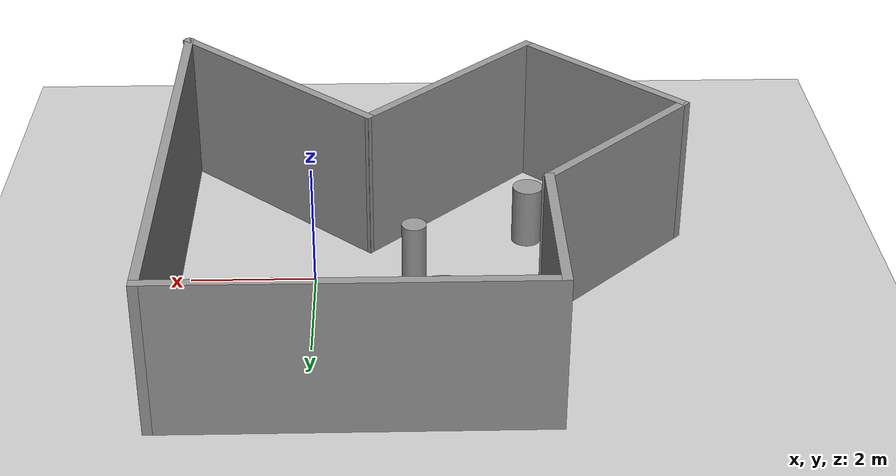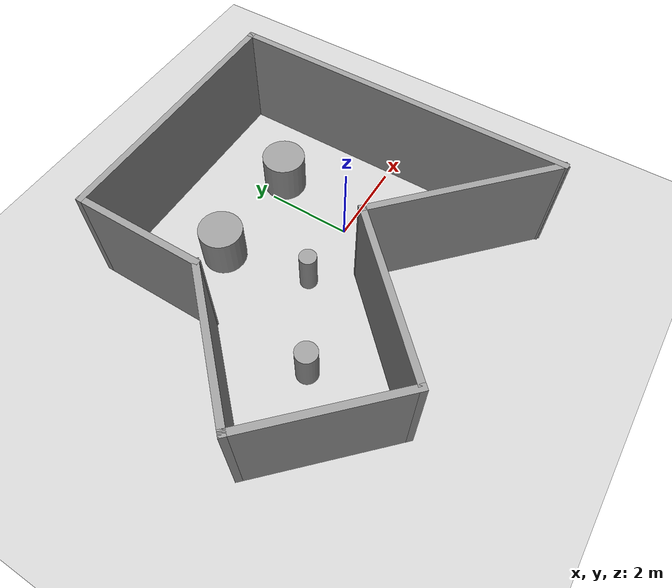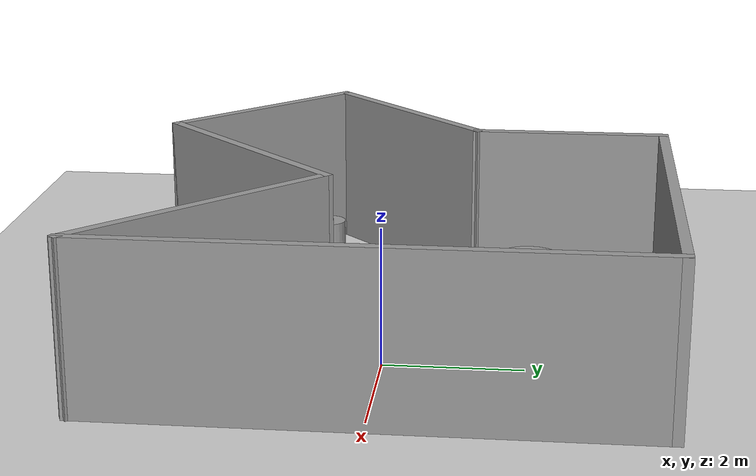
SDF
<sdf version="1.7">
 <world name="default">
  <light name="sun" type="directional">
   <pose>0 0 10 0 -0 0</pose>
   <diffuse>0.8 0.8 0.8 1</diffuse>
   <specular>0.2 0.2 0.2 1</specular>
   <attenuation>
    <range>1000</range>
    <constant>0.9</constant>
    <linear>0.01</linear>
    <quadratic>0.001</quadratic>
   </attenuation>
   <direction>-0.5 0.1 -0.9</direction>
   <spot><inner_angle>0</inner_angle><outer_angle>0</outer_angle><falloff>0</falloff></spot>
  </light>
  <model name="ground_plane">
   <static>1</static>
   <link name="link">
    <collision name="collision">
     <geometry><plane><normal>0 0 1</normal><size>100 100</size></plane></geometry>
     <surface><friction><ode><mu>100</mu><mu2>50</mu2></ode></friction></surface>
    </collision>
    <visual name="visual">
     <cast_shadows>0</cast_shadows>
     <geometry><plane><normal>0 0 1</normal><size>100 100</size></plane></geometry>
     <material>
      <script><uri>file://media/materials/scripts/gazebo.material</uri><name>Gazebo/Grey</name></script>
     </material>
    </visual>
   </link>
  </model>
  <gravity>0 0 -9.8</gravity>
  <magnetic_field>6e-06 2.3e-05 -4.2e-05</magnetic_field>
  <atmosphere type="adiabatic"/>
  <physics type="ode">
   <max_step_size>0.001</max_step_size>
   <real_time_factor>1</real_time_factor>
   <real_time_update_rate>1000</real_time_update_rate>
  </physics>
  <scene><ambient>0.4 0.4 0.4 1</ambient><background>0.7 0.7 0.7 1</background><shadows>1</shadows></scene>
  <audio><device>default</device></audio>
  <spherical_coordinates>
   <surface_model>EARTH_WGS84</surface_model>
   <latitude_deg>0</latitude_deg>
   <longitude_deg>0</longitude_deg>
   <elevation>0</elevation>
   <heading_deg>0</heading_deg>
  </spherical_coordinates>
  <model name="lab6_world">
   <pose>-1.87044 0.03744 0 0 -0 0</pose>
   <link name="Wall_10">
    <collision name="Wall_10_Collision">
     <geometry><box><size>3 0.15 2.5</size></box></geometry>
     <pose>0 0 1.25 0 -0 0</pose>
    </collision>
    <visual name="Wall_10_Visual">
     <pose>0 0 1.25 0 -0 0</pose>
     <geometry><box><size>3 0.15 2.5</size></box></geometry>
     <material>
      <script><uri>file://media/materials/scripts/gazebo.material</uri><name>Gazebo/Grey</name></script>
      <ambient>1 1 1 1</ambient>
     </material>
     <meta><layer>0</layer></meta>
    </visual>
    <pose>-1.74058 2.51552 0 0 -0 -1.5708</pose>
   </link>
   <link name="Wall_11">
    <collision name="Wall_11_Collision">
     <geometry><box><size>3.5 0.15 2.5</size></box></geometry>
     <pose>0 0 1.25 0 -0 0</pose>
    </collision>
    <visual name="Wall_11_Visual">
     <pose>0 0 1.25 0 -0 0</pose>
     <geometry><box><size>3.5 0.15 2.5</size></box></geometry>
     <material>
      <script><uri>file://media/materials/scripts/gazebo.material</uri><name>Gazebo/Grey</name></script>
      <ambient>1 1 1 1</ambient>
     </material>
     <meta><layer>0</layer></meta>
    </visual>
    <pose>-2.92498 -0.093886 0 0 -0 -2.35619</pose>
   </link>
   <link name="Wall_12">
    <collision name="Wall_12_Collision">
     <geometry><box><size>3.5 0.15 2.5</size></box></geometry>
     <pose>0 0 1.25 0 -0 0</pose>
    </collision>
    <visual name="Wall_12_Visual">
     <pose>0 0 1.25 0 -0 0</pose>
     <geometry><box><size>3.5 0.15 2.5</size></box></geometry>
     <material>
      <script><uri>file://media/materials/scripts/gazebo.material</uri><name>Gazebo/Grey</name></script>
      <ambient>1 1 1 1</ambient>
     </material>
     <meta><layer>0</layer></meta>
    </visual>
    <pose>-2.92498 -2.46269 0 0 -0 -0.785398</pose>
   </link>
   <link name="Wall_13">
    <collision name="Wall_13_Collision">
     <geometry><box><size>4 0.15 2.5</size></box></geometry>
     <pose>0 0 1.25 0 -0 0</pose>
    </collision>
    <visual name="Wall_13_Visual">
     <pose>0 0 1.25 0 -0 0</pose>
     <geometry><box><size>4 0.15 2.5</size></box></geometry>
     <material>
      <script><uri>file://media/materials/scripts/gazebo.material</uri><name>Gazebo/Grey</name></script>
      <ambient>1 1 1 1</ambient>
     </material>
     <meta><layer>0</layer></meta>
    </visual>
    <pose>-0.379401 -2.28592 0 0 -0 0.785398</pose>
   </link>
   <link name="Wall_14">
    <collision name="Wall_14_Collision">
     <geometry><box><size>4.47329 0.15 2.5</size></box></geometry>
     <pose>0 0 1.25 0 -0 0</pose>
    </collision>
    <visual name="Wall_14_Visual">
     <pose>0 0 1.25 0 -0 0</pose>
     <geometry><box><size>4.47329 0.15 2.5</size></box></geometry>
     <material>
      <script><uri>file://media/materials/scripts/gazebo.material</uri><name>Gazebo/Grey</name></script>
      <ambient>1 1 1 1</ambient>
     </material>
     <meta><layer>0</layer></meta>
    </visual>
    <pose>2.5456 -2.41711 0 0 -0 -0.762025</pose>
   </link>
   <link name="Wall_8">
    <collision name="Wall_8_Collision">
     <geometry><box><size>8 0.15 2.5</size></box></geometry>
     <pose>0 0 1.25 0 -0 0</pose>
    </collision>
    <visual name="Wall_8_Visual">
     <pose>0 0 1.25 0 -0 0</pose>
     <geometry><box><size>8 0.15 2.5</size></box></geometry>
     <material>
      <script><uri>file://media/materials/scripts/gazebo.material</uri><name>Gazebo/Grey</name></script>
      <ambient>1 1 1 1</ambient>
     </material>
     <meta><layer>0</layer></meta>
    </visual>
    <pose>4.10942 0.015518 0 0 -0 1.5708</pose>
   </link>
   <link name="Wall_9">
    <collision name="Wall_9_Collision">
     <geometry><box><size>6 0.15 2.5</size></box></geometry>
     <pose>0 0 1.25 0 -0 0</pose>
    </collision>
    <visual name="Wall_9_Visual">
     <pose>0 0 1.25 0 -0 0</pose>
     <geometry><box><size>6 0.15 2.5</size></box></geometry>
     <material>
      <script><uri>file://media/materials/scripts/gazebo.material</uri><name>Gazebo/Grey</name></script>
      <ambient>1 1 1 1</ambient>
     </material>
     <meta><layer>0</layer></meta>
    </visual>
    <pose>1.18442 3.94052 0 0 -0 3.14159</pose>
   </link>
   <static>1</static>
  </model>
  <model name="unit_cylinder">
   <pose>-3.5 -1.2 0.5 1e-06 -1e-06 0</pose>
   <link name="link">
    <inertial>
     <mass>1</mass>
     <inertia><ixx>0.145833</ixx><ixy>0</ixy><ixz>0</ixz><iyy>0.145833</iyy><iyz>0</iyz><izz>0.125</izz></inertia>
    </inertial>
    <collision name="collision">
     <geometry><cylinder><radius>0.25</radius><length>1</length></cylinder></geometry>
    </collision>
    <visual name="visual">
     <geometry><cylinder><radius>0.25</radius><length>1</length></cylinder></geometry>
     <material>
      <script><name>Gazebo/Grey</name><uri>file://media/materials/scripts/gazebo.material</uri></script>
     </material>
    </visual>
   </link>
  </model>
  <model name="unit_cylinder_0">
   <pose>-2 2 0.499998 3e-06 -3e-06 0</pose>
   <link name="link">
    <inertial>
     <mass>1</mass>
     <inertia><ixx>0.145833</ixx><ixy>0</ixy><ixz>0</ixz><iyy>0.145833</iyy><iyz>0</iyz><izz>0.125</izz></inertia>
    </inertial>
    <collision name="collision">
     <geometry><cylinder><radius>0.5</radius><length>1</length></cylinder></geometry>
    </collision>
    <visual name="visual">
     <geometry><cylinder><radius>0.5</radius><length>1</length></cylinder></geometry>
     <material>
      <script><name>Gazebo/Grey</name><uri>file://media/materials/scripts/gazebo.material</uri></script>
     </material>
    </visual>
   </link>
  </model>
  <model name="unit_cylinder_1">
   <pose>0.499997 2 0.499993 -4e-06 -2e-06 -0</pose>
   <link name="link">
    <inertial>
     <mass>1</mass>
     <inertia><ixx>0.145833</ixx><ixy>0</ixy><ixz>0</ixz><iyy>0.145833</iyy><iyz>0</iyz><izz>0.125</izz></inertia>
    </inertial>
    <collision name="collision">
     <geometry><cylinder><radius>0.5</radius><length>1</length></cylinder></geometry>
    </collision>
    <visual name="visual">
     <geometry><cylinder><radius>0.5</radius><length>1</length></cylinder></geometry>
     <material>
      <script><name>Gazebo/Grey</name><uri>file://media/materials/scripts/gazebo.material</uri></script>
     </material>
    </visual>
   </link>
  </model>
  <model name="unit_cylinder_2">
   <pose>-1.6 -0.020848 0.499997 0 -0 2e-06</pose>
   <link name="link">
    <inertial>
     <mass>1</mass>
     <inertia><ixx>0.145833</ixx><ixy>0</ixy><ixz>0</ixz><iyy>0.145833</iyy><iyz>0</iyz><izz>0.125</izz></inertia>
    </inertial>
    <collision name="collision">
     <geometry><cylinder><radius>0.2</radius><length>1</length></cylinder></geometry>
    </collision>
    <visual name="visual">
     <geometry><cylinder><radius>0.2</radius><length>1</length></cylinder></geometry>
     <material>
      <script><name>Gazebo/Grey</name><uri>file://media/materials/scripts/gazebo.material</uri></script>
     </material>
    </visual>
   </link>
  </model>
 </world>
</sdf>
